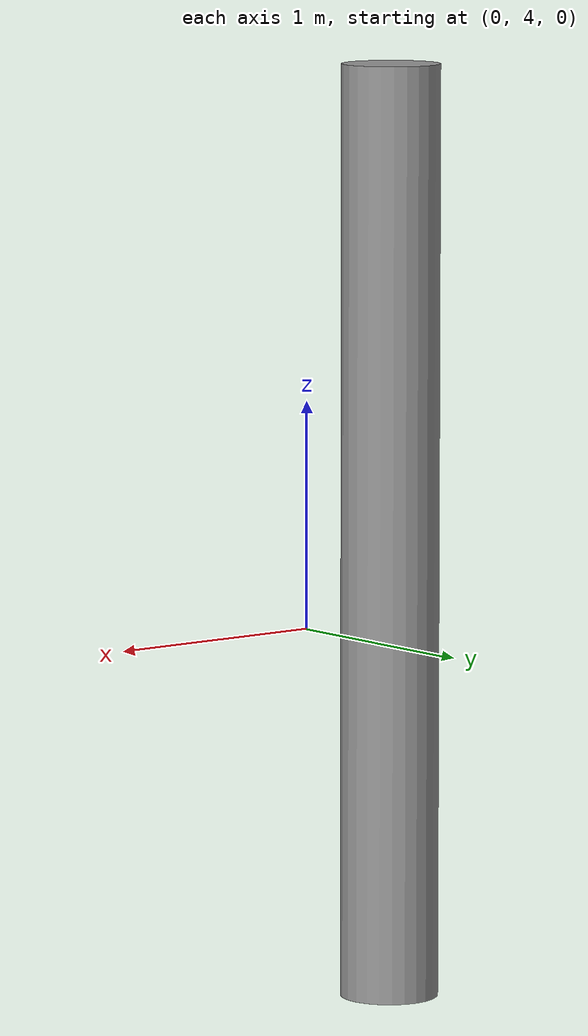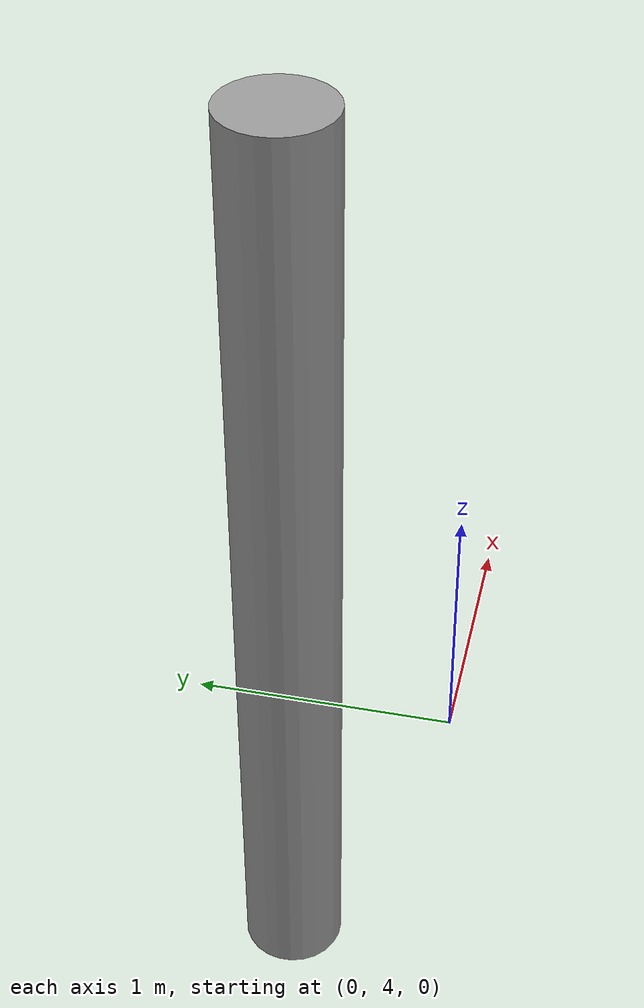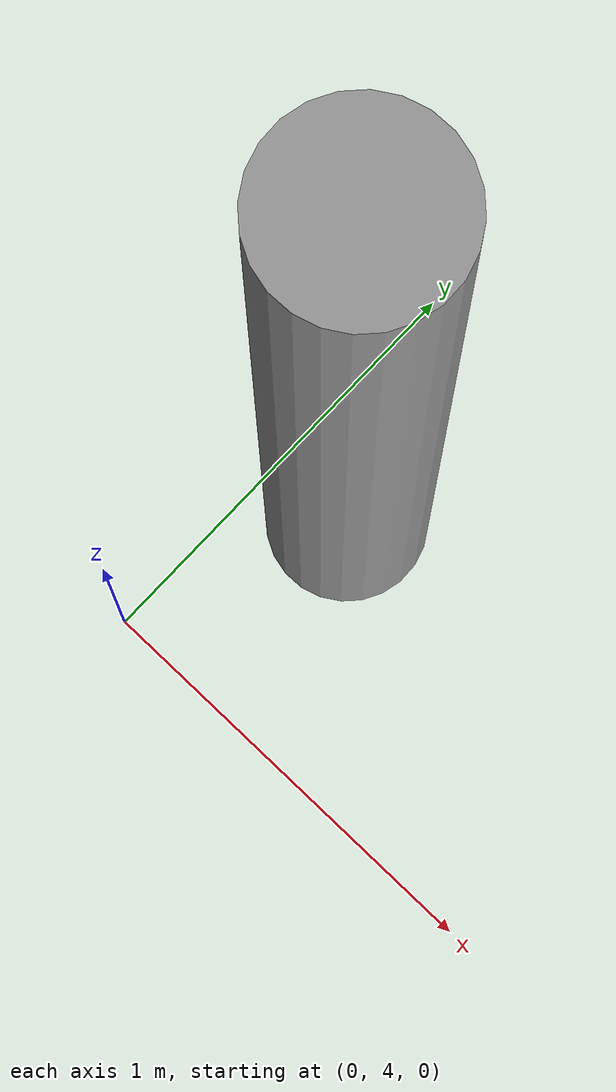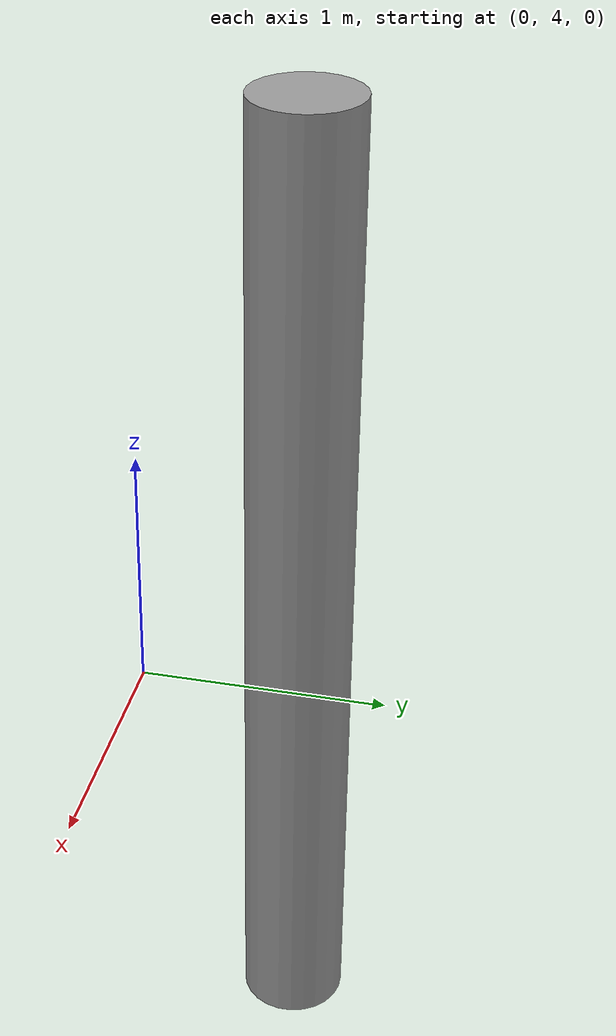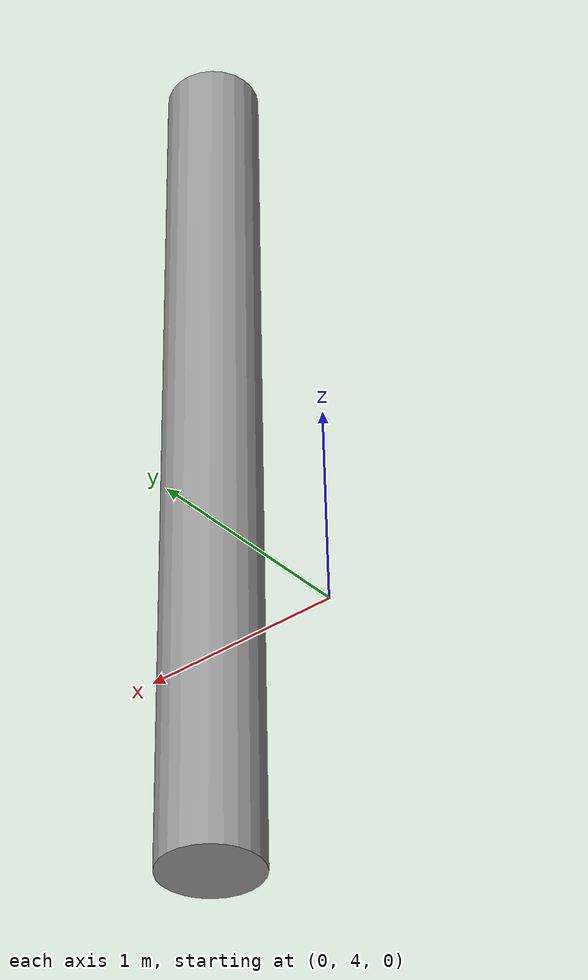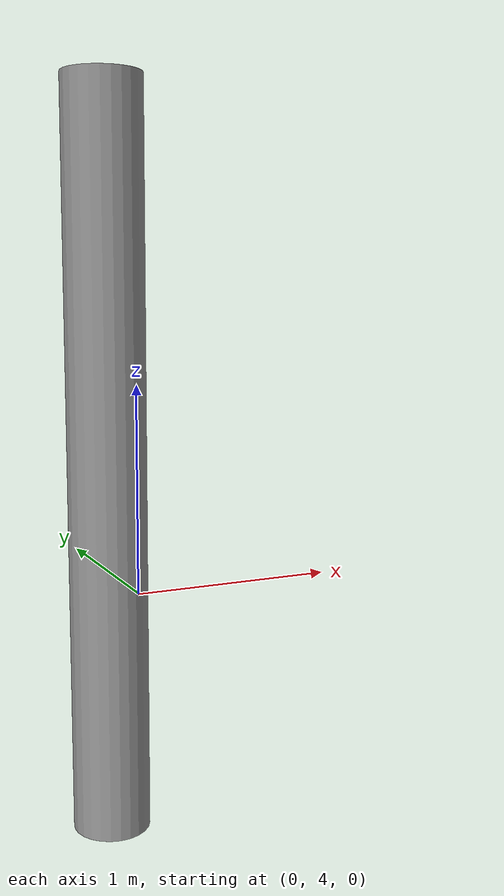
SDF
<?xml version="1.0" ?>
<sdf version="1.6">
  <model name='tree'>
    <pose frame=''>0.07192 4.65722 0.5 0 -0 2</pose>
    <static>1</static>
    <link name='link'>
      <collision name='collision'>
        <geometry>
          <cylinder>
            <radius>0.21</radius>
            <length>4</length>
          </cylinder>
        </geometry>
        <max_contacts>10</max_contacts>
        <surface>
          <contact>
            <ode/>
          </contact>
          <bounce/>
          <friction>
            <torsional>
              <ode/>
            </torsional>
            <ode/>
          </friction>
        </surface>
      </collision>
      <visual name='visual'>
        <geometry>
          <cylinder>
            <radius>0.21</radius>
            <length>4</length>
          </cylinder>
        </geometry>
        <material>
          <script>
            <name>Gazebo/Grey</name>
            <uri>file://media/materials/scripts/gazebo.material</uri>
          </script>
        </material>
      </visual>
      <self_collide>0</self_collide>
      <kinematic>0</kinematic>
    </link>
  </model>
</sdf>
